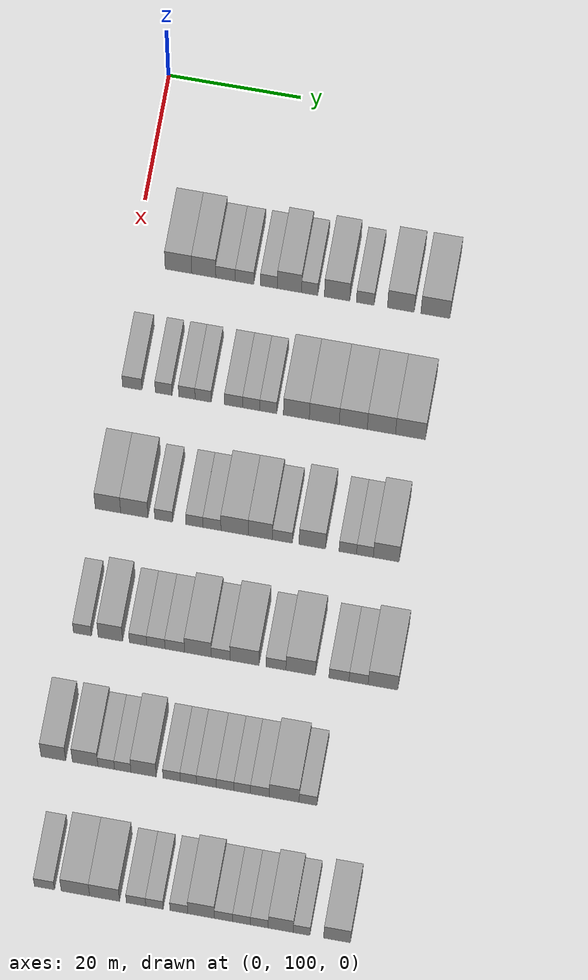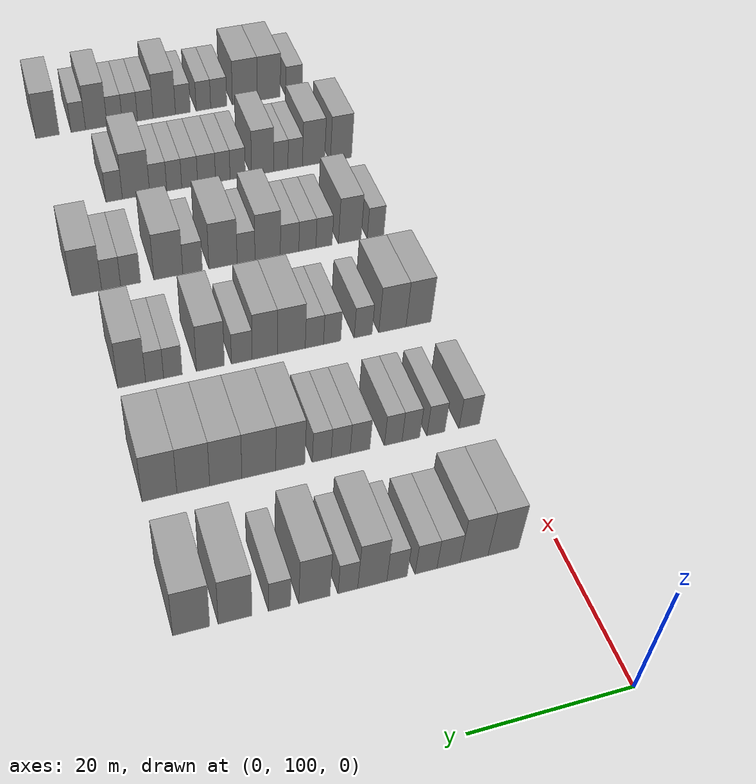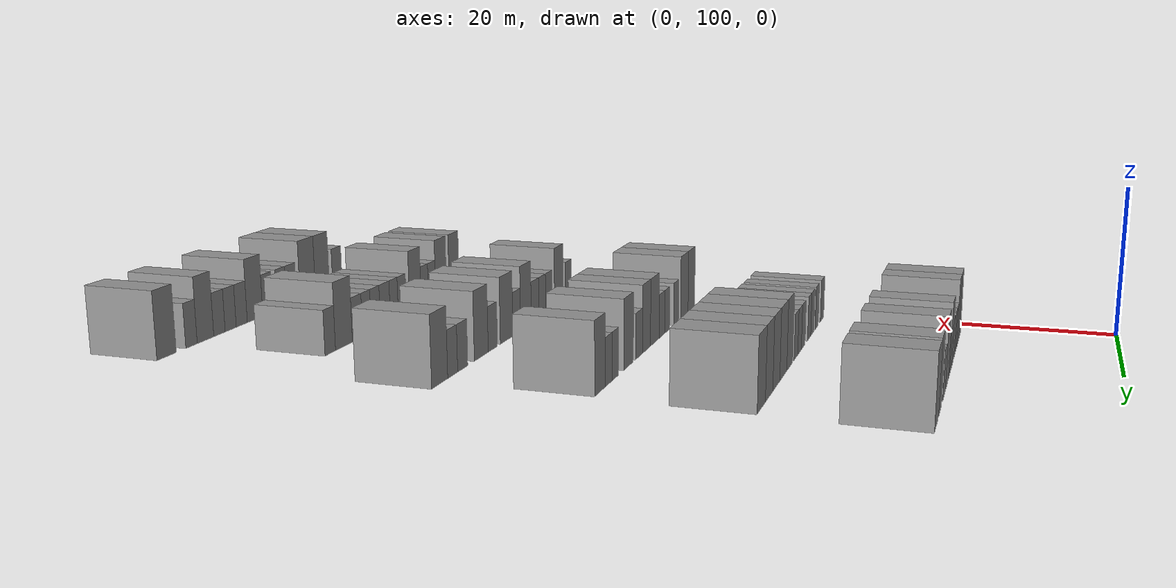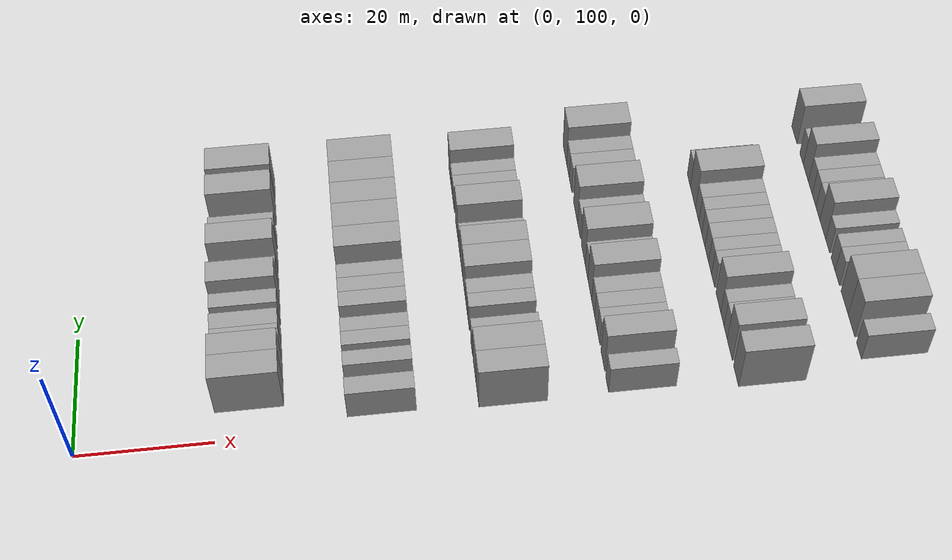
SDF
<sdf version="1.6">
 <world name="default">
  <model name="building_117">
   <static>1</static>
   <pose>25.0000 106.9747 0 0.000000 0.000000 0.000000</pose>
   <link name="link">
    <pose>0 0 4.50 0 0 0</pose>
    <collision name="collision"><geometry><box><size>10.0000 4.0019 9.0000</size></box></geometry></collision>
    <visual name="visual">
     <cast_shadows>0</cast_shadows>
     <geometry><box><size>10.0000 4.0019 9.0000</size></box></geometry>
     <material>
      <script>
       <uri>model://grey_wall/materials/scripts</uri>
       <uri>model://grey_wall/materials/textures</uri>
       <name>vrc/grey_wall</name>
      </script>
     </material>
    </visual>
   </link>
  </model>
  <model name="building_118">
   <static>1</static>
   <pose>25.0000 110.7939 0 0.000000 0.000000 0.000000</pose>
   <link name="link">
    <pose>0 0 4.50 0 0 0</pose>
    <collision name="collision"><geometry><box><size>10.0000 3.6364 9.0000</size></box></geometry></collision>
    <visual name="visual">
     <cast_shadows>0</cast_shadows>
     <geometry><box><size>10.0000 3.6364 9.0000</size></box></geometry>
     <material>
      <script>
       <uri>model://grey_wall/materials/scripts</uri>
       <uri>model://grey_wall/materials/textures</uri>
       <name>vrc/grey_wall</name>
      </script>
     </material>
    </visual>
   </link>
  </model>
  <model name="building_119">
   <static>1</static>
   <pose>25.0000 114.0875 0 0.000000 0.000000 0.000000</pose>
   <link name="link">
    <pose>0 0 3.00 0 0 0</pose>
    <collision name="collision"><geometry><box><size>10.0000 2.9508 6.0000</size></box></geometry></collision>
    <visual name="visual">
     <cast_shadows>0</cast_shadows>
     <geometry><box><size>10.0000 2.9508 6.0000</size></box></geometry>
     <material>
      <script>
       <uri>model://grey_wall/materials/scripts</uri>
       <uri>model://grey_wall/materials/textures</uri>
       <name>vrc/grey_wall</name>
      </script>
     </material>
    </visual>
   </link>
  </model>
  <model name="building_120">
   <static>1</static>
   <pose>25.0000 116.9517 0 0.000000 0.000000 0.000000</pose>
   <link name="link">
    <pose>0 0 3.00 0 0 0</pose>
    <collision name="collision"><geometry><box><size>10.0000 2.7777 6.0000</size></box></geometry></collision>
    <visual name="visual">
     <cast_shadows>0</cast_shadows>
     <geometry><box><size>10.0000 2.7777 6.0000</size></box></geometry>
     <material>
      <script>
       <uri>model://grey_wall/materials/scripts</uri>
       <uri>model://grey_wall/materials/textures</uri>
       <name>vrc/grey_wall</name>
      </script>
     </material>
    </visual>
   </link>
  </model>
  <model name="building_121">
   <static>1</static>
   <pose>25.0000 120.6244 0 0.000000 0.000000 0.000000</pose>
   <link name="link">
    <pose>0 0 3.00 0 0 0</pose>
    <collision name="collision"><geometry><box><size>10.0000 2.5677 6.0000</size></box></geometry></collision>
    <visual name="visual">
     <cast_shadows>0</cast_shadows>
     <geometry><box><size>10.0000 2.5677 6.0000</size></box></geometry>
     <material>
      <script>
       <uri>model://grey_wall/materials/scripts</uri>
       <uri>model://grey_wall/materials/textures</uri>
       <name>vrc/grey_wall</name>
      </script>
     </material>
    </visual>
   </link>
  </model>
  <model name="building_122">
   <static>1</static>
   <pose>25.0000 123.7289 0 0.000000 0.000000 0.000000</pose>
   <link name="link">
    <pose>0 0 4.50 0 0 0</pose>
    <collision name="collision"><geometry><box><size>10.0000 3.6414 9.0000</size></box></geometry></collision>
    <visual name="visual">
     <cast_shadows>0</cast_shadows>
     <geometry><box><size>10.0000 3.6414 9.0000</size></box></geometry>
     <material>
      <script>
       <uri>model://grey_wall/materials/scripts</uri>
       <uri>model://grey_wall/materials/textures</uri>
       <name>vrc/grey_wall</name>
      </script>
     </material>
    </visual>
   </link>
  </model>
  <model name="building_123">
   <static>1</static>
   <pose>25.0000 126.7699 0 0.000000 0.000000 0.000000</pose>
   <link name="link">
    <pose>0 0 3.00 0 0 0</pose>
    <collision name="collision"><geometry><box><size>10.0000 2.4405 6.0000</size></box></geometry></collision>
    <visual name="visual">
     <cast_shadows>0</cast_shadows>
     <geometry><box><size>10.0000 2.4405 6.0000</size></box></geometry>
     <material>
      <script>
       <uri>model://grey_wall/materials/scripts</uri>
       <uri>model://grey_wall/materials/textures</uri>
       <name>vrc/grey_wall</name>
      </script>
     </material>
    </visual>
   </link>
  </model>
  <model name="building_124">
   <static>1</static>
   <pose>25.0000 130.9013 0 0.000000 0.000000 0.000000</pose>
   <link name="link">
    <pose>0 0 4.50 0 0 0</pose>
    <collision name="collision"><geometry><box><size>10.0000 3.8223 9.0000</size></box></geometry></collision>
    <visual name="visual">
     <cast_shadows>0</cast_shadows>
     <geometry><box><size>10.0000 3.8223 9.0000</size></box></geometry>
     <material>
      <script>
       <uri>model://grey_wall/materials/scripts</uri>
       <uri>model://grey_wall/materials/textures</uri>
       <name>vrc/grey_wall</name>
      </script>
     </material>
    </visual>
   </link>
  </model>
  <model name="building_125">
   <static>1</static>
   <pose>25.0000 135.1494 0 0.000000 0.000000 0.000000</pose>
   <link name="link">
    <pose>0 0 3.00 0 0 0</pose>
    <collision name="collision"><geometry><box><size>10.0000 2.6740 6.0000</size></box></geometry></collision>
    <visual name="visual">
     <cast_shadows>0</cast_shadows>
     <geometry><box><size>10.0000 2.6740 6.0000</size></box></geometry>
     <material>
      <script>
       <uri>model://grey_wall/materials/scripts</uri>
       <uri>model://grey_wall/materials/textures</uri>
       <name>vrc/grey_wall</name>
      </script>
     </material>
    </visual>
   </link>
  </model>
  <model name="building_126">
   <static>1</static>
   <pose>25.0000 140.5015 0 0.000000 0.000000 0.000000</pose>
   <link name="link">
    <pose>0 0 4.50 0 0 0</pose>
    <collision name="collision"><geometry><box><size>10.0000 4.0302 9.0000</size></box></geometry></collision>
    <visual name="visual">
     <cast_shadows>0</cast_shadows>
     <geometry><box><size>10.0000 4.0302 9.0000</size></box></geometry>
     <material>
      <script>
       <uri>model://grey_wall/materials/scripts</uri>
       <uri>model://grey_wall/materials/textures</uri>
       <name>vrc/grey_wall</name>
      </script>
     </material>
    </visual>
   </link>
  </model>
  <model name="building_127">
   <static>1</static>
   <pose>25.0000 145.7011 0 0.000000 0.000000 0.000000</pose>
   <link name="link">
    <pose>0 0 4.50 0 0 0</pose>
    <collision name="collision"><geometry><box><size>10.0000 4.3690 9.0000</size></box></geometry></collision>
    <visual name="visual">
     <cast_shadows>0</cast_shadows>
     <geometry><box><size>10.0000 4.3690 9.0000</size></box></geometry>
     <material>
      <script>
       <uri>model://grey_wall/materials/scripts</uri>
       <uri>model://grey_wall/materials/textures</uri>
       <name>vrc/grey_wall</name>
      </script>
     </material>
    </visual>
   </link>
  </model>
  <model name="building_287">
   <static>1</static>
   <pose>44.0000 103.5478 0 0.000000 0.000000 0.000000</pose>
   <link name="link">
    <pose>0 0 3.00 0 0 0</pose>
    <collision name="collision"><geometry><box><size>10.0000 2.9135 6.0000</size></box></geometry></collision>
    <visual name="visual">
     <cast_shadows>0</cast_shadows>
     <geometry><box><size>10.0000 2.9135 6.0000</size></box></geometry>
     <material>
      <script>
       <uri>model://grey_wall/materials/scripts</uri>
       <uri>model://grey_wall/materials/textures</uri>
       <name>vrc/grey_wall</name>
      </script>
     </material>
    </visual>
   </link>
  </model>
  <model name="building_288">
   <static>1</static>
   <pose>44.0000 108.2622 0 0.000000 0.000000 0.000000</pose>
   <link name="link">
    <pose>0 0 3.00 0 0 0</pose>
    <collision name="collision"><geometry><box><size>10.0000 2.5154 6.0000</size></box></geometry></collision>
    <visual name="visual">
     <cast_shadows>0</cast_shadows>
     <geometry><box><size>10.0000 2.5154 6.0000</size></box></geometry>
     <material>
      <script>
       <uri>model://grey_wall/materials/scripts</uri>
       <uri>model://grey_wall/materials/textures</uri>
       <name>vrc/grey_wall</name>
      </script>
     </material>
    </visual>
   </link>
  </model>
  <model name="building_289">
   <static>1</static>
   <pose>44.0000 111.7478 0 0.000000 0.000000 0.000000</pose>
   <link name="link">
    <pose>0 0 3.00 0 0 0</pose>
    <collision name="collision"><geometry><box><size>10.0000 2.4559 6.0000</size></box></geometry></collision>
    <visual name="visual">
     <cast_shadows>0</cast_shadows>
     <geometry><box><size>10.0000 2.4559 6.0000</size></box></geometry>
     <material>
      <script>
       <uri>model://grey_wall/materials/scripts</uri>
       <uri>model://grey_wall/materials/textures</uri>
       <name>vrc/grey_wall</name>
      </script>
     </material>
    </visual>
   </link>
  </model>
  <model name="building_290">
   <static>1</static>
   <pose>44.0000 114.1933 0 0.000000 0.000000 0.000000</pose>
   <link name="link">
    <pose>0 0 3.00 0 0 0</pose>
    <collision name="collision"><geometry><box><size>10.0000 2.4350 6.0000</size></box></geometry></collision>
    <visual name="visual">
     <cast_shadows>0</cast_shadows>
     <geometry><box><size>10.0000 2.4350 6.0000</size></box></geometry>
     <material>
      <script>
       <uri>model://grey_wall/materials/scripts</uri>
       <uri>model://grey_wall/materials/textures</uri>
       <name>vrc/grey_wall</name>
      </script>
     </material>
    </visual>
   </link>
  </model>
  <model name="building_291">
   <static>1</static>
   <pose>44.0000 118.7569 0 0.000000 0.000000 0.000000</pose>
   <link name="link">
    <pose>0 0 3.00 0 0 0</pose>
    <collision name="collision"><geometry><box><size>10.0000 2.6921 6.0000</size></box></geometry></collision>
    <visual name="visual">
     <cast_shadows>0</cast_shadows>
     <geometry><box><size>10.0000 2.6921 6.0000</size></box></geometry>
     <material>
      <script>
       <uri>model://grey_wall/materials/scripts</uri>
       <uri>model://grey_wall/materials/textures</uri>
       <name>vrc/grey_wall</name>
      </script>
     </material>
    </visual>
   </link>
  </model>
  <model name="building_292">
   <static>1</static>
   <pose>44.0000 121.3943 0 0.000000 0.000000 0.000000</pose>
   <link name="link">
    <pose>0 0 3.00 0 0 0</pose>
    <collision name="collision"><geometry><box><size>10.0000 2.5827 6.0000</size></box></geometry></collision>
    <visual name="visual">
     <cast_shadows>0</cast_shadows>
     <geometry><box><size>10.0000 2.5827 6.0000</size></box></geometry>
     <material>
      <script>
       <uri>model://grey_wall/materials/scripts</uri>
       <uri>model://grey_wall/materials/textures</uri>
       <name>vrc/grey_wall</name>
      </script>
     </material>
    </visual>
   </link>
  </model>
  <model name="building_293">
   <static>1</static>
   <pose>44.0000 123.9598 0 0.000000 0.000000 0.000000</pose>
   <link name="link">
    <pose>0 0 3.00 0 0 0</pose>
    <collision name="collision"><geometry><box><size>10.0000 2.5484 6.0000</size></box></geometry></collision>
    <visual name="visual">
     <cast_shadows>0</cast_shadows>
     <geometry><box><size>10.0000 2.5484 6.0000</size></box></geometry>
     <material>
      <script>
       <uri>model://grey_wall/materials/scripts</uri>
       <uri>model://grey_wall/materials/textures</uri>
       <name>vrc/grey_wall</name>
      </script>
     </material>
    </visual>
   </link>
  </model>
  <model name="building_294">
   <static>1</static>
   <pose>44.0000 128.1755 0 0.000000 0.000000 0.000000</pose>
   <link name="link">
    <pose>0 0 4.50 0 0 0</pose>
    <collision name="collision"><geometry><box><size>10.0000 3.8830 9.0000</size></box></geometry></collision>
    <visual name="visual">
     <cast_shadows>0</cast_shadows>
     <geometry><box><size>10.0000 3.8830 9.0000</size></box></geometry>
     <material>
      <script>
       <uri>model://grey_wall/materials/scripts</uri>
       <uri>model://grey_wall/materials/textures</uri>
       <name>vrc/grey_wall</name>
      </script>
     </material>
    </visual>
   </link>
  </model>
  <model name="building_295">
   <static>1</static>
   <pose>44.0000 132.3570 0 0.000000 0.000000 0.000000</pose>
   <link name="link">
    <pose>0 0 4.50 0 0 0</pose>
    <collision name="collision"><geometry><box><size>10.0000 4.4799 9.0000</size></box></geometry></collision>
    <visual name="visual">
     <cast_shadows>0</cast_shadows>
     <geometry><box><size>10.0000 4.4799 9.0000</size></box></geometry>
     <material>
      <script>
       <uri>model://grey_wall/materials/scripts</uri>
       <uri>model://grey_wall/materials/textures</uri>
       <name>vrc/grey_wall</name>
      </script>
     </material>
    </visual>
   </link>
  </model>
  <model name="building_296">
   <static>1</static>
   <pose>44.0000 136.6948 0 0.000000 0.000000 0.000000</pose>
   <link name="link">
    <pose>0 0 4.50 0 0 0</pose>
    <collision name="collision"><geometry><box><size>10.0000 4.1956 9.0000</size></box></geometry></collision>
    <visual name="visual">
     <cast_shadows>0</cast_shadows>
     <geometry><box><size>10.0000 4.1956 9.0000</size></box></geometry>
     <material>
      <script>
       <uri>model://grey_wall/materials/scripts</uri>
       <uri>model://grey_wall/materials/textures</uri>
       <name>vrc/grey_wall</name>
      </script>
     </material>
    </visual>
   </link>
  </model>
  <model name="building_297">
   <static>1</static>
   <pose>44.0000 140.9111 0 0.000000 0.000000 0.000000</pose>
   <link name="link">
    <pose>0 0 4.50 0 0 0</pose>
    <collision name="collision"><geometry><box><size>10.0000 4.2370 9.0000</size></box></geometry></collision>
    <visual name="visual">
     <cast_shadows>0</cast_shadows>
     <geometry><box><size>10.0000 4.2370 9.0000</size></box></geometry>
     <material>
      <script>
       <uri>model://grey_wall/materials/scripts</uri>
       <uri>model://grey_wall/materials/textures</uri>
       <name>vrc/grey_wall</name>
      </script>
     </material>
    </visual>
   </link>
  </model>
  <model name="building_298">
   <static>1</static>
   <pose>44.0000 145.2720 0 0.000000 0.000000 0.000000</pose>
   <link name="link">
    <pose>0 0 4.50 0 0 0</pose>
    <collision name="collision"><geometry><box><size>10.0000 4.4848 9.0000</size></box></geometry></collision>
    <visual name="visual">
     <cast_shadows>0</cast_shadows>
     <geometry><box><size>10.0000 4.4848 9.0000</size></box></geometry>
     <material>
      <script>
       <uri>model://grey_wall/materials/scripts</uri>
       <uri>model://grey_wall/materials/textures</uri>
       <name>vrc/grey_wall</name>
      </script>
     </material>
    </visual>
   </link>
  </model>
  <model name="building_461">
   <static>1</static>
   <pose>63.0000 103.4574 0 0.000000 0.000000 0.000000</pose>
   <link name="link">
    <pose>0 0 4.50 0 0 0</pose>
    <collision name="collision"><geometry><box><size>10.0000 3.7947 9.0000</size></box></geometry></collision>
    <visual name="visual">
     <cast_shadows>0</cast_shadows>
     <geometry><box><size>10.0000 3.7947 9.0000</size></box></geometry>
     <material>
      <script>
       <uri>model://grey_wall/materials/scripts</uri>
       <uri>model://grey_wall/materials/textures</uri>
       <name>vrc/grey_wall</name>
      </script>
     </material>
    </visual>
   </link>
  </model>
  <model name="building_462">
   <static>1</static>
   <pose>63.0000 107.4018 0 0.000000 0.000000 0.000000</pose>
   <link name="link">
    <pose>0 0 4.50 0 0 0</pose>
    <collision name="collision"><geometry><box><size>10.0000 4.0943 9.0000</size></box></geometry></collision>
    <visual name="visual">
     <cast_shadows>0</cast_shadows>
     <geometry><box><size>10.0000 4.0943 9.0000</size></box></geometry>
     <material>
      <script>
       <uri>model://grey_wall/materials/scripts</uri>
       <uri>model://grey_wall/materials/textures</uri>
       <name>vrc/grey_wall</name>
      </script>
     </material>
    </visual>
   </link>
  </model>
  <model name="building_463">
   <static>1</static>
   <pose>63.0000 111.7808 0 0.000000 0.000000 0.000000</pose>
   <link name="link">
    <pose>0 0 3.00 0 0 0</pose>
    <collision name="collision"><geometry><box><size>10.0000 2.6637 6.0000</size></box></geometry></collision>
    <visual name="visual">
     <cast_shadows>0</cast_shadows>
     <geometry><box><size>10.0000 2.6637 6.0000</size></box></geometry>
     <material>
      <script>
       <uri>model://grey_wall/materials/scripts</uri>
       <uri>model://grey_wall/materials/textures</uri>
       <name>vrc/grey_wall</name>
      </script>
     </material>
    </visual>
   </link>
  </model>
  <model name="building_464">
   <static>1</static>
   <pose>63.0000 116.3853 0 0.000000 0.000000 0.000000</pose>
   <link name="link">
    <pose>0 0 3.00 0 0 0</pose>
    <collision name="collision"><geometry><box><size>10.0000 2.5452 6.0000</size></box></geometry></collision>
    <visual name="visual">
     <cast_shadows>0</cast_shadows>
     <geometry><box><size>10.0000 2.5452 6.0000</size></box></geometry>
     <material>
      <script>
       <uri>model://grey_wall/materials/scripts</uri>
       <uri>model://grey_wall/materials/textures</uri>
       <name>vrc/grey_wall</name>
      </script>
     </material>
    </visual>
   </link>
  </model>
  <model name="building_465">
   <static>1</static>
   <pose>63.0000 118.9952 0 0.000000 0.000000 0.000000</pose>
   <link name="link">
    <pose>0 0 3.00 0 0 0</pose>
    <collision name="collision"><geometry><box><size>10.0000 2.6745 6.0000</size></box></geometry></collision>
    <visual name="visual">
     <cast_shadows>0</cast_shadows>
     <geometry><box><size>10.0000 2.6745 6.0000</size></box></geometry>
     <material>
      <script>
       <uri>model://grey_wall/materials/scripts</uri>
       <uri>model://grey_wall/materials/textures</uri>
       <name>vrc/grey_wall</name>
      </script>
     </material>
    </visual>
   </link>
  </model>
  <model name="building_466">
   <static>1</static>
   <pose>63.0000 122.3622 0 0.000000 0.000000 0.000000</pose>
   <link name="link">
    <pose>0 0 4.50 0 0 0</pose>
    <collision name="collision"><geometry><box><size>10.0000 4.0595 9.0000</size></box></geometry></collision>
    <visual name="visual">
     <cast_shadows>0</cast_shadows>
     <geometry><box><size>10.0000 4.0595 9.0000</size></box></geometry>
     <material>
      <script>
       <uri>model://grey_wall/materials/scripts</uri>
       <uri>model://grey_wall/materials/textures</uri>
       <name>vrc/grey_wall</name>
      </script>
     </material>
    </visual>
   </link>
  </model>
  <model name="building_467">
   <static>1</static>
   <pose>63.0000 126.2098 0 0.000000 0.000000 0.000000</pose>
   <link name="link">
    <pose>0 0 4.50 0 0 0</pose>
    <collision name="collision"><geometry><box><size>10.0000 3.6356 9.0000</size></box></geometry></collision>
    <visual name="visual">
     <cast_shadows>0</cast_shadows>
     <geometry><box><size>10.0000 3.6356 9.0000</size></box></geometry>
     <material>
      <script>
       <uri>model://grey_wall/materials/scripts</uri>
       <uri>model://grey_wall/materials/textures</uri>
       <name>vrc/grey_wall</name>
      </script>
     </material>
    </visual>
   </link>
  </model>
  <model name="building_468">
   <static>1</static>
   <pose>63.0000 129.5051 0 0.000000 0.000000 0.000000</pose>
   <link name="link">
    <pose>0 0 3.00 0 0 0</pose>
    <collision name="collision"><geometry><box><size>10.0000 2.9551 6.0000</size></box></geometry></collision>
    <visual name="visual">
     <cast_shadows>0</cast_shadows>
     <geometry><box><size>10.0000 2.9551 6.0000</size></box></geometry>
     <material>
      <script>
       <uri>model://grey_wall/materials/scripts</uri>
       <uri>model://grey_wall/materials/textures</uri>
       <name>vrc/grey_wall</name>
      </script>
     </material>
    </visual>
   </link>
  </model>
  <model name="building_469">
   <static>1</static>
   <pose>63.0000 133.9637 0 0.000000 0.000000 0.000000</pose>
   <link name="link">
    <pose>0 0 4.50 0 0 0</pose>
    <collision name="collision"><geometry><box><size>10.0000 3.9620 9.0000</size></box></geometry></collision>
    <visual name="visual">
     <cast_shadows>0</cast_shadows>
     <geometry><box><size>10.0000 3.9620 9.0000</size></box></geometry>
     <material>
      <script>
       <uri>model://grey_wall/materials/scripts</uri>
       <uri>model://grey_wall/materials/textures</uri>
       <name>vrc/grey_wall</name>
      </script>
     </material>
    </visual>
   </link>
  </model>
  <model name="building_470">
   <static>1</static>
   <pose>63.0000 139.2480 0 0.000000 0.000000 0.000000</pose>
   <link name="link">
    <pose>0 0 3.00 0 0 0</pose>
    <collision name="collision"><geometry><box><size>10.0000 2.6067 6.0000</size></box></geometry></collision>
    <visual name="visual">
     <cast_shadows>0</cast_shadows>
     <geometry><box><size>10.0000 2.6067 6.0000</size></box></geometry>
     <material>
      <script>
       <uri>model://grey_wall/materials/scripts</uri>
       <uri>model://grey_wall/materials/textures</uri>
       <name>vrc/grey_wall</name>
      </script>
     </material>
    </visual>
   </link>
  </model>
  <model name="building_471">
   <static>1</static>
   <pose>63.0000 141.8030 0 0.000000 0.000000 0.000000</pose>
   <link name="link">
    <pose>0 0 3.00 0 0 0</pose>
    <collision name="collision"><geometry><box><size>10.0000 2.5034 6.0000</size></box></geometry></collision>
    <visual name="visual">
     <cast_shadows>0</cast_shadows>
     <geometry><box><size>10.0000 2.5034 6.0000</size></box></geometry>
     <material>
      <script>
       <uri>model://grey_wall/materials/scripts</uri>
       <uri>model://grey_wall/materials/textures</uri>
       <name>vrc/grey_wall</name>
      </script>
     </material>
    </visual>
   </link>
  </model>
  <model name="building_472">
   <static>1</static>
   <pose>63.0000 144.9797 0 0.000000 0.000000 0.000000</pose>
   <link name="link">
    <pose>0 0 4.50 0 0 0</pose>
    <collision name="collision"><geometry><box><size>10.0000 3.8500 9.0000</size></box></geometry></collision>
    <visual name="visual">
     <cast_shadows>0</cast_shadows>
     <geometry><box><size>10.0000 3.8500 9.0000</size></box></geometry>
     <material>
      <script>
       <uri>model://grey_wall/materials/scripts</uri>
       <uri>model://grey_wall/materials/textures</uri>
       <name>vrc/grey_wall</name>
      </script>
     </material>
    </visual>
   </link>
  </model>
  <model name="building_635">
   <static>1</static>
   <pose>82.0000 103.2406 0 0.000000 0.000000 0.000000</pose>
   <link name="link">
    <pose>0 0 3.00 0 0 0</pose>
    <collision name="collision"><geometry><box><size>10.0000 2.6761 6.0000</size></box></geometry></collision>
    <visual name="visual">
     <cast_shadows>0</cast_shadows>
     <geometry><box><size>10.0000 2.6761 6.0000</size></box></geometry>
     <material>
      <script>
       <uri>model://grey_wall/materials/scripts</uri>
       <uri>model://grey_wall/materials/textures</uri>
       <name>vrc/grey_wall</name>
      </script>
     </material>
    </visual>
   </link>
  </model>
  <model name="building_636">
   <static>1</static>
   <pose>82.0000 107.3938 0 0.000000 0.000000 0.000000</pose>
   <link name="link">
    <pose>0 0 4.50 0 0 0</pose>
    <collision name="collision"><geometry><box><size>10.0000 3.6304 9.0000</size></box></geometry></collision>
    <visual name="visual">
     <cast_shadows>0</cast_shadows>
     <geometry><box><size>10.0000 3.6304 9.0000</size></box></geometry>
     <material>
      <script>
       <uri>model://grey_wall/materials/scripts</uri>
       <uri>model://grey_wall/materials/textures</uri>
       <name>vrc/grey_wall</name>
      </script>
     </material>
    </visual>
   </link>
  </model>
  <model name="building_637">
   <static>1</static>
   <pose>82.0000 111.5008 0 0.000000 0.000000 0.000000</pose>
   <link name="link">
    <pose>0 0 3.00 0 0 0</pose>
    <collision name="collision"><geometry><box><size>10.0000 2.5835 6.0000</size></box></geometry></collision>
    <visual name="visual">
     <cast_shadows>0</cast_shadows>
     <geometry><box><size>10.0000 2.5835 6.0000</size></box></geometry>
     <material>
      <script>
       <uri>model://grey_wall/materials/scripts</uri>
       <uri>model://grey_wall/materials/textures</uri>
       <name>vrc/grey_wall</name>
      </script>
     </material>
    </visual>
   </link>
  </model>
  <model name="building_638">
   <static>1</static>
   <pose>82.0000 114.1459 0 0.000000 0.000000 0.000000</pose>
   <link name="link">
    <pose>0 0 3.00 0 0 0</pose>
    <collision name="collision"><geometry><box><size>10.0000 2.7066 6.0000</size></box></geometry></collision>
    <visual name="visual">
     <cast_shadows>0</cast_shadows>
     <geometry><box><size>10.0000 2.7066 6.0000</size></box></geometry>
     <material>
      <script>
       <uri>model://grey_wall/materials/scripts</uri>
       <uri>model://grey_wall/materials/textures</uri>
       <name>vrc/grey_wall</name>
      </script>
     </material>
    </visual>
   </link>
  </model>
  <model name="building_639">
   <static>1</static>
   <pose>82.0000 116.9561 0 0.000000 0.000000 0.000000</pose>
   <link name="link">
    <pose>0 0 3.00 0 0 0</pose>
    <collision name="collision"><geometry><box><size>10.0000 2.9138 6.0000</size></box></geometry></collision>
    <visual name="visual">
     <cast_shadows>0</cast_shadows>
     <geometry><box><size>10.0000 2.9138 6.0000</size></box></geometry>
     <material>
      <script>
       <uri>model://grey_wall/materials/scripts</uri>
       <uri>model://grey_wall/materials/textures</uri>
       <name>vrc/grey_wall</name>
      </script>
     </material>
    </visual>
   </link>
  </model>
  <model name="building_640">
   <static>1</static>
   <pose>82.0000 120.3952 0 0.000000 0.000000 0.000000</pose>
   <link name="link">
    <pose>0 0 4.50 0 0 0</pose>
    <collision name="collision"><geometry><box><size>10.0000 3.9644 9.0000</size></box></geometry></collision>
    <visual name="visual">
     <cast_shadows>0</cast_shadows>
     <geometry><box><size>10.0000 3.9644 9.0000</size></box></geometry>
     <material>
      <script>
       <uri>model://grey_wall/materials/scripts</uri>
       <uri>model://grey_wall/materials/textures</uri>
       <name>vrc/grey_wall</name>
      </script>
     </material>
    </visual>
   </link>
  </model>
  <model name="building_641">
   <static>1</static>
   <pose>82.0000 123.7570 0 0.000000 0.000000 0.000000</pose>
   <link name="link">
    <pose>0 0 3.00 0 0 0</pose>
    <collision name="collision"><geometry><box><size>10.0000 2.7593 6.0000</size></box></geometry></collision>
    <visual name="visual">
     <cast_shadows>0</cast_shadows>
     <geometry><box><size>10.0000 2.7593 6.0000</size></box></geometry>
     <material>
      <script>
       <uri>model://grey_wall/materials/scripts</uri>
       <uri>model://grey_wall/materials/textures</uri>
       <name>vrc/grey_wall</name>
      </script>
     </material>
    </visual>
   </link>
  </model>
  <model name="building_642">
   <static>1</static>
   <pose>82.0000 127.3009 0 0.000000 0.000000 0.000000</pose>
   <link name="link">
    <pose>0 0 4.50 0 0 0</pose>
    <collision name="collision"><geometry><box><size>10.0000 4.3286 9.0000</size></box></geometry></collision>
    <visual name="visual">
     <cast_shadows>0</cast_shadows>
     <geometry><box><size>10.0000 4.3286 9.0000</size></box></geometry>
     <material>
      <script>
       <uri>model://grey_wall/materials/scripts</uri>
       <uri>model://grey_wall/materials/textures</uri>
       <name>vrc/grey_wall</name>
      </script>
     </material>
    </visual>
   </link>
  </model>
  <model name="building_643">
   <static>1</static>
   <pose>82.0000 131.9573 0 0.000000 0.000000 0.000000</pose>
   <link name="link">
    <pose>0 0 3.00 0 0 0</pose>
    <collision name="collision"><geometry><box><size>10.0000 2.9843 6.0000</size></box></geometry></collision>
    <visual name="visual">
     <cast_shadows>0</cast_shadows>
     <geometry><box><size>10.0000 2.9843 6.0000</size></box></geometry>
     <material>
      <script>
       <uri>model://grey_wall/materials/scripts</uri>
       <uri>model://grey_wall/materials/textures</uri>
       <name>vrc/grey_wall</name>
      </script>
     </material>
    </visual>
   </link>
  </model>
  <model name="building_644">
   <static>1</static>
   <pose>82.0000 135.6350 0 0.000000 0.000000 0.000000</pose>
   <link name="link">
    <pose>0 0 4.50 0 0 0</pose>
    <collision name="collision"><geometry><box><size>10.0000 4.3710 9.0000</size></box></geometry></collision>
    <visual name="visual">
     <cast_shadows>0</cast_shadows>
     <geometry><box><size>10.0000 4.3710 9.0000</size></box></geometry>
     <material>
      <script>
       <uri>model://grey_wall/materials/scripts</uri>
       <uri>model://grey_wall/materials/textures</uri>
       <name>vrc/grey_wall</name>
      </script>
     </material>
    </visual>
   </link>
  </model>
  <model name="building_645">
   <static>1</static>
   <pose>82.0000 141.3121 0 0.000000 0.000000 0.000000</pose>
   <link name="link">
    <pose>0 0 3.00 0 0 0</pose>
    <collision name="collision"><geometry><box><size>10.0000 2.9831 6.0000</size></box></geometry></collision>
    <visual name="visual">
     <cast_shadows>0</cast_shadows>
     <geometry><box><size>10.0000 2.9831 6.0000</size></box></geometry>
     <material>
      <script>
       <uri>model://grey_wall/materials/scripts</uri>
       <uri>model://grey_wall/materials/textures</uri>
       <name>vrc/grey_wall</name>
      </script>
     </material>
    </visual>
   </link>
  </model>
  <model name="building_646">
   <static>1</static>
   <pose>82.0000 144.2156 0 0.000000 0.000000 0.000000</pose>
   <link name="link">
    <pose>0 0 3.00 0 0 0</pose>
    <collision name="collision"><geometry><box><size>10.0000 2.8239 6.0000</size></box></geometry></collision>
    <visual name="visual">
     <cast_shadows>0</cast_shadows>
     <geometry><box><size>10.0000 2.8239 6.0000</size></box></geometry>
     <material>
      <script>
       <uri>model://grey_wall/materials/scripts</uri>
       <uri>model://grey_wall/materials/textures</uri>
       <name>vrc/grey_wall</name>
      </script>
     </material>
    </visual>
   </link>
  </model>
  <model name="building_647">
   <static>1</static>
   <pose>82.0000 147.8264 0 0.000000 0.000000 0.000000</pose>
   <link name="link">
    <pose>0 0 4.50 0 0 0</pose>
    <collision name="collision"><geometry><box><size>10.0000 4.3977 9.0000</size></box></geometry></collision>
    <visual name="visual">
     <cast_shadows>0</cast_shadows>
     <geometry><box><size>10.0000 4.3977 9.0000</size></box></geometry>
     <material>
      <script>
       <uri>model://grey_wall/materials/scripts</uri>
       <uri>model://grey_wall/materials/textures</uri>
       <name>vrc/grey_wall</name>
      </script>
     </material>
    </visual>
   </link>
  </model>
  <model name="building_810">
   <static>1</static>
   <pose>101.0000 102.5367 0 0.000000 0.000000 0.000000</pose>
   <link name="link">
    <pose>0 0 4.50 0 0 0</pose>
    <collision name="collision"><geometry><box><size>10.0000 3.6369 9.0000</size></box></geometry></collision>
    <visual name="visual">
     <cast_shadows>0</cast_shadows>
     <geometry><box><size>10.0000 3.6369 9.0000</size></box></geometry>
     <material>
      <script>
       <uri>model://grey_wall/materials/scripts</uri>
       <uri>model://grey_wall/materials/textures</uri>
       <name>vrc/grey_wall</name>
      </script>
     </material>
    </visual>
   </link>
  </model>
  <model name="building_811">
   <static>1</static>
   <pose>101.0000 107.2394 0 0.000000 0.000000 0.000000</pose>
   <link name="link">
    <pose>0 0 4.50 0 0 0</pose>
    <collision name="collision"><geometry><box><size>10.0000 3.7685 9.0000</size></box></geometry></collision>
    <visual name="visual">
     <cast_shadows>0</cast_shadows>
     <geometry><box><size>10.0000 3.7685 9.0000</size></box></geometry>
     <material>
      <script>
       <uri>model://grey_wall/materials/scripts</uri>
       <uri>model://grey_wall/materials/textures</uri>
       <name>vrc/grey_wall</name>
      </script>
     </material>
    </visual>
   </link>
  </model>
  <model name="building_812">
   <static>1</static>
   <pose>101.0000 110.3523 0 0.000000 0.000000 0.000000</pose>
   <link name="link">
    <pose>0 0 3.00 0 0 0</pose>
    <collision name="collision"><geometry><box><size>10.0000 2.4574 6.0000</size></box></geometry></collision>
    <visual name="visual">
     <cast_shadows>0</cast_shadows>
     <geometry><box><size>10.0000 2.4574 6.0000</size></box></geometry>
     <material>
      <script>
       <uri>model://grey_wall/materials/scripts</uri>
       <uri>model://grey_wall/materials/textures</uri>
       <name>vrc/grey_wall</name>
      </script>
     </material>
    </visual>
   </link>
  </model>
  <model name="building_813">
   <static>1</static>
   <pose>101.0000 112.7902 0 0.000000 0.000000 0.000000</pose>
   <link name="link">
    <pose>0 0 3.00 0 0 0</pose>
    <collision name="collision"><geometry><box><size>10.0000 2.4182 6.0000</size></box></geometry></collision>
    <visual name="visual">
     <cast_shadows>0</cast_shadows>
     <geometry><box><size>10.0000 2.4182 6.0000</size></box></geometry>
     <material>
      <script>
       <uri>model://grey_wall/materials/scripts</uri>
       <uri>model://grey_wall/materials/textures</uri>
       <name>vrc/grey_wall</name>
      </script>
     </material>
    </visual>
   </link>
  </model>
  <model name="building_814">
   <static>1</static>
   <pose>101.0000 115.8644 0 0.000000 0.000000 0.000000</pose>
   <link name="link">
    <pose>0 0 4.50 0 0 0</pose>
    <collision name="collision"><geometry><box><size>10.0000 3.7302 9.0000</size></box></geometry></collision>
    <visual name="visual">
     <cast_shadows>0</cast_shadows>
     <geometry><box><size>10.0000 3.7302 9.0000</size></box></geometry>
     <material>
      <script>
       <uri>model://grey_wall/materials/scripts</uri>
       <uri>model://grey_wall/materials/textures</uri>
       <name>vrc/grey_wall</name>
      </script>
     </material>
    </visual>
   </link>
  </model>
  <model name="building_815">
   <static>1</static>
   <pose>101.0000 119.9969 0 0.000000 0.000000 0.000000</pose>
   <link name="link">
    <pose>0 0 3.00 0 0 0</pose>
    <collision name="collision"><geometry><box><size>10.0000 2.5347 6.0000</size></box></geometry></collision>
    <visual name="visual">
     <cast_shadows>0</cast_shadows>
     <geometry><box><size>10.0000 2.5347 6.0000</size></box></geometry>
     <material>
      <script>
       <uri>model://grey_wall/materials/scripts</uri>
       <uri>model://grey_wall/materials/textures</uri>
       <name>vrc/grey_wall</name>
      </script>
     </material>
    </visual>
   </link>
  </model>
  <model name="building_816">
   <static>1</static>
   <pose>101.0000 122.4655 0 0.000000 0.000000 0.000000</pose>
   <link name="link">
    <pose>0 0 3.00 0 0 0</pose>
    <collision name="collision"><geometry><box><size>10.0000 2.4025 6.0000</size></box></geometry></collision>
    <visual name="visual">
     <cast_shadows>0</cast_shadows>
     <geometry><box><size>10.0000 2.4025 6.0000</size></box></geometry>
     <material>
      <script>
       <uri>model://grey_wall/materials/scripts</uri>
       <uri>model://grey_wall/materials/textures</uri>
       <name>vrc/grey_wall</name>
      </script>
     </material>
    </visual>
   </link>
  </model>
  <model name="building_817">
   <static>1</static>
   <pose>101.0000 125.1347 0 0.000000 0.000000 0.000000</pose>
   <link name="link">
    <pose>0 0 3.00 0 0 0</pose>
    <collision name="collision"><geometry><box><size>10.0000 2.9360 6.0000</size></box></geometry></collision>
    <visual name="visual">
     <cast_shadows>0</cast_shadows>
     <geometry><box><size>10.0000 2.9360 6.0000</size></box></geometry>
     <material>
      <script>
       <uri>model://grey_wall/materials/scripts</uri>
       <uri>model://grey_wall/materials/textures</uri>
       <name>vrc/grey_wall</name>
      </script>
     </material>
    </visual>
   </link>
  </model>
  <model name="building_818">
   <static>1</static>
   <pose>101.0000 127.9028 0 0.000000 0.000000 0.000000</pose>
   <link name="link">
    <pose>0 0 3.00 0 0 0</pose>
    <collision name="collision"><geometry><box><size>10.0000 2.6002 6.0000</size></box></geometry></collision>
    <visual name="visual">
     <cast_shadows>0</cast_shadows>
     <geometry><box><size>10.0000 2.6002 6.0000</size></box></geometry>
     <material>
      <script>
       <uri>model://grey_wall/materials/scripts</uri>
       <uri>model://grey_wall/materials/textures</uri>
       <name>vrc/grey_wall</name>
      </script>
     </material>
    </visual>
   </link>
  </model>
  <model name="building_819">
   <static>1</static>
   <pose>101.0000 130.4240 0 0.000000 0.000000 0.000000</pose>
   <link name="link">
    <pose>0 0 3.00 0 0 0</pose>
    <collision name="collision"><geometry><box><size>10.0000 2.4423 6.0000</size></box></geometry></collision>
    <visual name="visual">
     <cast_shadows>0</cast_shadows>
     <geometry><box><size>10.0000 2.4423 6.0000</size></box></geometry>
     <material>
      <script>
       <uri>model://grey_wall/materials/scripts</uri>
       <uri>model://grey_wall/materials/textures</uri>
       <name>vrc/grey_wall</name>
      </script>
     </material>
    </visual>
   </link>
  </model>
  <model name="building_820">
   <static>1</static>
   <pose>101.0000 133.0305 0 0.000000 0.000000 0.000000</pose>
   <link name="link">
    <pose>0 0 3.00 0 0 0</pose>
    <collision name="collision"><geometry><box><size>10.0000 2.7706 6.0000</size></box></geometry></collision>
    <visual name="visual">
     <cast_shadows>0</cast_shadows>
     <geometry><box><size>10.0000 2.7706 6.0000</size></box></geometry>
     <material>
      <script>
       <uri>model://grey_wall/materials/scripts</uri>
       <uri>model://grey_wall/materials/textures</uri>
       <name>vrc/grey_wall</name>
      </script>
     </material>
    </visual>
   </link>
  </model>
  <model name="building_821">
   <static>1</static>
   <pose>101.0000 136.6137 0 0.000000 0.000000 0.000000</pose>
   <link name="link">
    <pose>0 0 4.50 0 0 0</pose>
    <collision name="collision"><geometry><box><size>10.0000 4.3959 9.0000</size></box></geometry></collision>
    <visual name="visual">
     <cast_shadows>0</cast_shadows>
     <geometry><box><size>10.0000 4.3959 9.0000</size></box></geometry>
     <material>
      <script>
       <uri>model://grey_wall/materials/scripts</uri>
       <uri>model://grey_wall/materials/textures</uri>
       <name>vrc/grey_wall</name>
      </script>
     </material>
    </visual>
   </link>
  </model>
  <model name="building_822">
   <static>1</static>
   <pose>101.0000 140.1268 0 0.000000 0.000000 0.000000</pose>
   <link name="link">
    <pose>0 0 3.00 0 0 0</pose>
    <collision name="collision"><geometry><box><size>10.0000 2.6303 6.0000</size></box></geometry></collision>
    <visual name="visual">
     <cast_shadows>0</cast_shadows>
     <geometry><box><size>10.0000 2.6303 6.0000</size></box></geometry>
     <material>
      <script>
       <uri>model://grey_wall/materials/scripts</uri>
       <uri>model://grey_wall/materials/textures</uri>
       <name>vrc/grey_wall</name>
      </script>
     </material>
    </visual>
   </link>
  </model>
  <model name="building_984">
   <static>1</static>
   <pose>120.0000 104.8509 0 0.000000 0.000000 0.000000</pose>
   <link name="link">
    <pose>0 0 3.00 0 0 0</pose>
    <collision name="collision"><geometry><box><size>10.0000 2.9512 6.0000</size></box></geometry></collision>
    <visual name="visual">
     <cast_shadows>0</cast_shadows>
     <geometry><box><size>10.0000 2.9512 6.0000</size></box></geometry>
     <material>
      <script>
       <uri>model://grey_wall/materials/scripts</uri>
       <uri>model://grey_wall/materials/textures</uri>
       <name>vrc/grey_wall</name>
      </script>
     </material>
    </visual>
   </link>
  </model>
  <model name="building_985">
   <static>1</static>
   <pose>120.0000 109.4062 0 0.000000 0.000000 0.000000</pose>
   <link name="link">
    <pose>0 0 4.50 0 0 0</pose>
    <collision name="collision"><geometry><box><size>10.0000 4.1594 9.0000</size></box></geometry></collision>
    <visual name="visual">
     <cast_shadows>0</cast_shadows>
     <geometry><box><size>10.0000 4.1594 9.0000</size></box></geometry>
     <material>
      <script>
       <uri>model://grey_wall/materials/scripts</uri>
       <uri>model://grey_wall/materials/textures</uri>
       <name>vrc/grey_wall</name>
      </script>
     </material>
    </visual>
   </link>
  </model>
  <model name="building_986">
   <static>1</static>
   <pose>120.0000 113.6858 0 0.000000 0.000000 0.000000</pose>
   <link name="link">
    <pose>0 0 4.50 0 0 0</pose>
    <collision name="collision"><geometry><box><size>10.0000 4.3997 9.0000</size></box></geometry></collision>
    <visual name="visual">
     <cast_shadows>0</cast_shadows>
     <geometry><box><size>10.0000 4.3997 9.0000</size></box></geometry>
     <material>
      <script>
       <uri>model://grey_wall/materials/scripts</uri>
       <uri>model://grey_wall/materials/textures</uri>
       <name>vrc/grey_wall</name>
      </script>
     </material>
    </visual>
   </link>
  </model>
  <model name="building_987">
   <static>1</static>
   <pose>120.0000 118.3093 0 0.000000 0.000000 0.000000</pose>
   <link name="link">
    <pose>0 0 3.00 0 0 0</pose>
    <collision name="collision"><geometry><box><size>10.0000 2.8474 6.0000</size></box></geometry></collision>
    <visual name="visual">
     <cast_shadows>0</cast_shadows>
     <geometry><box><size>10.0000 2.8474 6.0000</size></box></geometry>
     <material>
      <script>
       <uri>model://grey_wall/materials/scripts</uri>
       <uri>model://grey_wall/materials/textures</uri>
       <name>vrc/grey_wall</name>
      </script>
     </material>
    </visual>
   </link>
  </model>
  <model name="building_988">
   <static>1</static>
   <pose>120.0000 121.0084 0 0.000000 0.000000 0.000000</pose>
   <link name="link">
    <pose>0 0 3.00 0 0 0</pose>
    <collision name="collision"><geometry><box><size>10.0000 2.5507 6.0000</size></box></geometry></collision>
    <visual name="visual">
     <cast_shadows>0</cast_shadows>
     <geometry><box><size>10.0000 2.5507 6.0000</size></box></geometry>
     <material>
      <script>
       <uri>model://grey_wall/materials/scripts</uri>
       <uri>model://grey_wall/materials/textures</uri>
       <name>vrc/grey_wall</name>
      </script>
     </material>
    </visual>
   </link>
  </model>
  <model name="building_989">
   <static>1</static>
   <pose>120.0000 124.5923 0 0.000000 0.000000 0.000000</pose>
   <link name="link">
    <pose>0 0 3.00 0 0 0</pose>
    <collision name="collision"><geometry><box><size>10.0000 2.6171 6.0000</size></box></geometry></collision>
    <visual name="visual">
     <cast_shadows>0</cast_shadows>
     <geometry><box><size>10.0000 2.6171 6.0000</size></box></geometry>
     <material>
      <script>
       <uri>model://grey_wall/materials/scripts</uri>
       <uri>model://grey_wall/materials/textures</uri>
       <name>vrc/grey_wall</name>
      </script>
     </material>
    </visual>
   </link>
  </model>
  <model name="building_990">
   <static>1</static>
   <pose>120.0000 127.8463 0 0.000000 0.000000 0.000000</pose>
   <link name="link">
    <pose>0 0 4.50 0 0 0</pose>
    <collision name="collision"><geometry><box><size>10.0000 3.8909 9.0000</size></box></geometry></collision>
    <visual name="visual">
     <cast_shadows>0</cast_shadows>
     <geometry><box><size>10.0000 3.8909 9.0000</size></box></geometry>
     <material>
      <script>
       <uri>model://grey_wall/materials/scripts</uri>
       <uri>model://grey_wall/materials/textures</uri>
       <name>vrc/grey_wall</name>
      </script>
     </material>
    </visual>
   </link>
  </model>
  <model name="building_991">
   <static>1</static>
   <pose>120.0000 131.1356 0 0.000000 0.000000 0.000000</pose>
   <link name="link">
    <pose>0 0 3.00 0 0 0</pose>
    <collision name="collision"><geometry><box><size>10.0000 2.6877 6.0000</size></box></geometry></collision>
    <visual name="visual">
     <cast_shadows>0</cast_shadows>
     <geometry><box><size>10.0000 2.6877 6.0000</size></box></geometry>
     <material>
      <script>
       <uri>model://grey_wall/materials/scripts</uri>
       <uri>model://grey_wall/materials/textures</uri>
       <name>vrc/grey_wall</name>
      </script>
     </material>
    </visual>
   </link>
  </model>
  <model name="building_992">
   <static>1</static>
   <pose>120.0000 133.7806 0 0.000000 0.000000 0.000000</pose>
   <link name="link">
    <pose>0 0 3.00 0 0 0</pose>
    <collision name="collision"><geometry><box><size>10.0000 2.6022 6.0000</size></box></geometry></collision>
    <visual name="visual">
     <cast_shadows>0</cast_shadows>
     <geometry><box><size>10.0000 2.6022 6.0000</size></box></geometry>
     <material>
      <script>
       <uri>model://grey_wall/materials/scripts</uri>
       <uri>model://grey_wall/materials/textures</uri>
       <name>vrc/grey_wall</name>
      </script>
     </material>
    </visual>
   </link>
  </model>
  <model name="building_993">
   <static>1</static>
   <pose>120.0000 136.3842 0 0.000000 0.000000 0.000000</pose>
   <link name="link">
    <pose>0 0 3.00 0 0 0</pose>
    <collision name="collision"><geometry><box><size>10.0000 2.6050 6.0000</size></box></geometry></collision>
    <visual name="visual">
     <cast_shadows>0</cast_shadows>
     <geometry><box><size>10.0000 2.6050 6.0000</size></box></geometry>
     <material>
      <script>
       <uri>model://grey_wall/materials/scripts</uri>
       <uri>model://grey_wall/materials/textures</uri>
       <name>vrc/grey_wall</name>
      </script>
     </material>
    </visual>
   </link>
  </model>
  <model name="building_994">
   <static>1</static>
   <pose>120.0000 139.5253 0 0.000000 0.000000 0.000000</pose>
   <link name="link">
    <pose>0 0 4.50 0 0 0</pose>
    <collision name="collision"><geometry><box><size>10.0000 3.6772 9.0000</size></box></geometry></collision>
    <visual name="visual">
     <cast_shadows>0</cast_shadows>
     <geometry><box><size>10.0000 3.6772 9.0000</size></box></geometry>
     <material>
      <script>
       <uri>model://grey_wall/materials/scripts</uri>
       <uri>model://grey_wall/materials/textures</uri>
       <name>vrc/grey_wall</name>
      </script>
     </material>
    </visual>
   </link>
  </model>
  <model name="building_995">
   <static>1</static>
   <pose>120.0000 142.5868 0 0.000000 0.000000 0.000000</pose>
   <link name="link">
    <pose>0 0 3.00 0 0 0</pose>
    <collision name="collision"><geometry><box><size>10.0000 2.4457 6.0000</size></box></geometry></collision>
    <visual name="visual">
     <cast_shadows>0</cast_shadows>
     <geometry><box><size>10.0000 2.4457 6.0000</size></box></geometry>
     <material>
      <script>
       <uri>model://grey_wall/materials/scripts</uri>
       <uri>model://grey_wall/materials/textures</uri>
       <name>vrc/grey_wall</name>
      </script>
     </material>
    </visual>
   </link>
  </model>
  <model name="building_996">
   <static>1</static>
   <pose>120.0000 147.7730 0 0.000000 0.000000 0.000000</pose>
   <link name="link">
    <pose>0 0 4.50 0 0 0</pose>
    <collision name="collision"><geometry><box><size>10.0000 3.9267 9.0000</size></box></geometry></collision>
    <visual name="visual">
     <cast_shadows>0</cast_shadows>
     <geometry><box><size>10.0000 3.9267 9.0000</size></box></geometry>
     <material>
      <script>
       <uri>model://grey_wall/materials/scripts</uri>
       <uri>model://grey_wall/materials/textures</uri>
       <name>vrc/grey_wall</name>
      </script>
     </material>
    </visual>
   </link>
  </model>
 </world>
</sdf>
